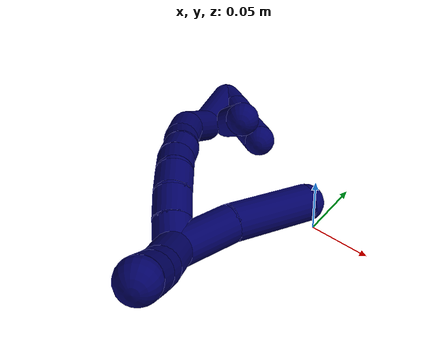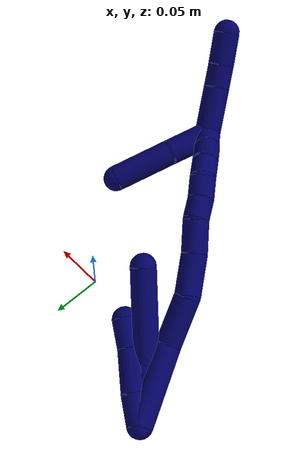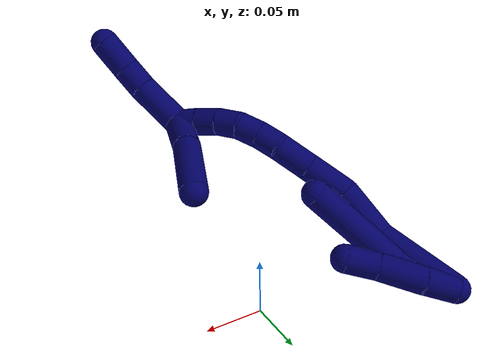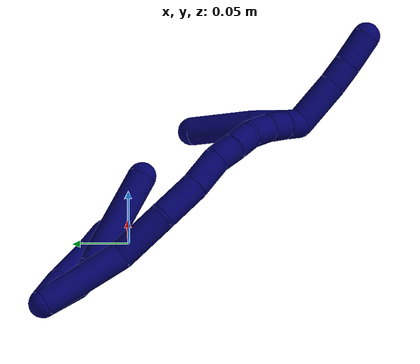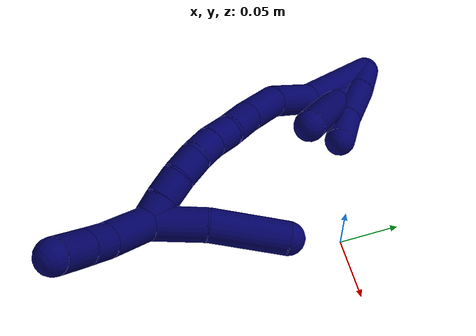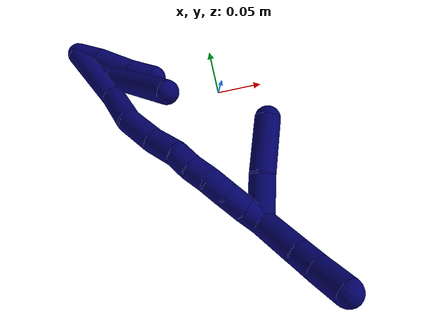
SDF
<sdf version="1.7">
 <world name="default">
  <model name="7">
   <static>0</static>
   <link name="7">
    <collision name="collision-cylinder-e_1_2_8">
     <pose>0.000739 0.003597 -0.017818 -2.94237 0.04062 -0.401032</pose>
     <geometry><cylinder><radius>0.0125</radius><length>0.036385</length></cylinder></geometry>
     <surface>
      <friction><ode><mu>1.16</mu><mu2>1.16</mu2><slip1>0</slip1><slip2>0</slip2></ode></friction>
      <contact><ode><kp>1e+06</kp><kd>1</kd><max_vel>0</max_vel><min_depth>0.001</min_depth></ode></contact>
     </surface>
    </collision>
    <visual name="visual-cylinder-e_1_2_8">
     <pose>0.000739 0.003597 -0.017818 -2.94237 0.04062 -0.401032</pose>
     <geometry><cylinder><radius>0.0125</radius><length>0.036385</length></cylinder></geometry>
     <material><ambient>0.003922 0 0.403922 1</ambient></material>
    </visual>
    <collision name="collision-cylinder-e_2_8_9">
     <pose>0.004495 0.006638 -0.045988 3.08783 0.283256 2.76879</pose>
     <geometry><cylinder><radius>0.0125</radius><length>0.021595</length></cylinder></geometry>
     <surface>
      <friction><ode><mu>1.16</mu><mu2>1.16</mu2><slip1>0</slip1><slip2>0</slip2></ode></friction>
      <contact><ode><kp>1e+06</kp><kd>1</kd><max_vel>0</max_vel><min_depth>0.001</min_depth></ode></contact>
     </surface>
    </collision>
    <visual name="visual-cylinder-e_2_8_9">
     <pose>0.004495 0.006638 -0.045988 3.08783 0.283256 2.76879</pose>
     <geometry><cylinder><radius>0.0125</radius><length>0.021595</length></cylinder></geometry>
     <material><ambient>0.003922 0 0.403922 1</ambient></material>
    </visual>
    <collision name="collision-cylinder-e_3_9_6">
     <pose>0.025432 -0.005298 -0.097161 2.86974 0.40005 1.95463</pose>
     <geometry><cylinder><radius>0.0125</radius><length>0.09202</length></cylinder></geometry>
     <surface>
      <friction><ode><mu>1.16</mu><mu2>1.16</mu2><slip1>0</slip1><slip2>0</slip2></ode></friction>
      <contact><ode><kp>1e+06</kp><kd>1</kd><max_vel>0</max_vel><min_depth>0.001</min_depth></ode></contact>
     </surface>
    </collision>
    <visual name="visual-cylinder-e_3_9_6">
     <pose>0.025432 -0.005298 -0.097161 2.86974 0.40005 1.95463</pose>
     <geometry><cylinder><radius>0.0125</radius><length>0.09202</length></cylinder></geometry>
     <material><ambient>0.003922 0 0.403922 1</ambient></material>
    </visual>
    <collision name="collision-cylinder-e_1_2_10">
     <pose>0.005813 0.002841 -0.013323 -2.93148 0.403345 -2.18927</pose>
     <geometry><cylinder><radius>0.0125</radius><length>0.029622</length></cylinder></geometry>
     <surface>
      <friction><ode><mu>1.16</mu><mu2>1.16</mu2><slip1>0</slip1><slip2>0</slip2></ode></friction>
      <contact><ode><kp>1e+06</kp><kd>1</kd><max_vel>0</max_vel><min_depth>0.001</min_depth></ode></contact>
     </surface>
    </collision>
    <visual name="visual-cylinder-e_1_2_10">
     <pose>0.005813 0.002841 -0.013323 -2.93148 0.403345 -2.18927</pose>
     <geometry><cylinder><radius>0.0125</radius><length>0.029622</length></cylinder></geometry>
     <material><ambient>0.003922 0 0.403922 1</ambient></material>
    </visual>
    <collision name="collision-cylinder-e_2_10_11">
     <pose>0.017934 0.009283 -0.046086 -2.95845 0.308802 -2.07551</pose>
     <geometry><cylinder><radius>0.0125</radius><length>0.041504</length></cylinder></geometry>
     <surface>
      <friction><ode><mu>1.16</mu><mu2>1.16</mu2><slip1>0</slip1><slip2>0</slip2></ode></friction>
      <contact><ode><kp>1e+06</kp><kd>1</kd><max_vel>0</max_vel><min_depth>0.001</min_depth></ode></contact>
     </surface>
    </collision>
    <visual name="visual-cylinder-e_2_10_11">
     <pose>0.017934 0.009283 -0.046086 -2.95845 0.308802 -2.07551</pose>
     <geometry><cylinder><radius>0.0125</radius><length>0.041504</length></cylinder></geometry>
     <material><ambient>0.003922 0 0.403922 1</ambient></material>
    </visual>
    <collision name="collision-cylinder-e_3_11_5">
     <pose>0.029852 0.016137 -0.078423 -2.89452 0.399225 -2.04065</pose>
     <geometry><cylinder><radius>0.0125</radius><length>0.028874</length></cylinder></geometry>
     <surface>
      <friction><ode><mu>1.16</mu><mu2>1.16</mu2><slip1>0</slip1><slip2>0</slip2></ode></friction>
      <contact><ode><kp>1e+06</kp><kd>1</kd><max_vel>0</max_vel><min_depth>0.001</min_depth></ode></contact>
     </surface>
    </collision>
    <visual name="visual-cylinder-e_3_11_5">
     <pose>0.029852 0.016137 -0.078423 -2.89452 0.399225 -2.04065</pose>
     <geometry><cylinder><radius>0.0125</radius><length>0.028874</length></cylinder></geometry>
     <material><ambient>0.003922 0 0.403922 1</ambient></material>
    </visual>
    <collision name="collision-cylinder-e_1_2_12">
     <pose>-0.002174 -0.002559 -0.039144 3.07632 -0.05537 -1.40685</pose>
     <geometry><cylinder><radius>0.0125</radius><length>0.078576</length></cylinder></geometry>
     <surface>
      <friction><ode><mu>1.16</mu><mu2>1.16</mu2><slip1>0</slip1><slip2>0</slip2></ode></friction>
      <contact><ode><kp>1e+06</kp><kd>1</kd><max_vel>0</max_vel><min_depth>0.001</min_depth></ode></contact>
     </surface>
    </collision>
    <visual name="visual-cylinder-e_1_2_12">
     <pose>-0.002174 -0.002559 -0.039144 3.07632 -0.05537 -1.40685</pose>
     <geometry><cylinder><radius>0.0125</radius><length>0.078576</length></cylinder></geometry>
     <material><ambient>0.003922 0 0.403922 1</ambient></material>
    </visual>
    <collision name="collision-cylinder-e_2_12_13">
     <pose>-0.004133 -0.013835 -0.10115 2.77731 0.008828 0.047923</pose>
     <geometry><cylinder><radius>0.0125</radius><length>0.048937</length></cylinder></geometry>
     <surface>
      <friction><ode><mu>1.16</mu><mu2>1.16</mu2><slip1>0</slip1><slip2>0</slip2></ode></friction>
      <contact><ode><kp>1e+06</kp><kd>1</kd><max_vel>0</max_vel><min_depth>0.001</min_depth></ode></contact>
     </surface>
    </collision>
    <visual name="visual-cylinder-e_2_12_13">
     <pose>-0.004133 -0.013835 -0.10115 2.77731 0.008828 0.047923</pose>
     <geometry><cylinder><radius>0.0125</radius><length>0.048937</length></cylinder></geometry>
     <material><ambient>0.003922 0 0.403922 1</ambient></material>
    </visual>
    <collision name="collision-cylinder-e_3_13_14">
     <pose>-0.001068 -0.024497 -0.143483 3.04201 0.144559 1.93605</pose>
     <geometry><cylinder><radius>0.0125</radius><length>0.039548</length></cylinder></geometry>
     <surface>
      <friction><ode><mu>1.16</mu><mu2>1.16</mu2><slip1>0</slip1><slip2>0</slip2></ode></friction>
      <contact><ode><kp>1e+06</kp><kd>1</kd><max_vel>0</max_vel><min_depth>0.001</min_depth></ode></contact>
     </surface>
    </collision>
    <visual name="visual-cylinder-e_3_13_14">
     <pose>-0.001068 -0.024497 -0.143483 3.04201 0.144559 1.93605</pose>
     <geometry><cylinder><radius>0.0125</radius><length>0.039548</length></cylinder></geometry>
     <material><ambient>0.003922 0 0.403922 1</ambient></material>
    </visual>
    <collision name="collision-cylinder-e_4_14_15">
     <pose>0.006069 -0.02826 -0.178239 3.02325 0.271679 2.32363</pose>
     <geometry><cylinder><radius>0.0125</radius><length>0.031958</length></cylinder></geometry>
     <surface>
      <friction><ode><mu>1.16</mu><mu2>1.16</mu2><slip1>0</slip1><slip2>0</slip2></ode></friction>
      <contact><ode><kp>1e+06</kp><kd>1</kd><max_vel>0</max_vel><min_depth>0.001</min_depth></ode></contact>
     </surface>
    </collision>
    <visual name="visual-cylinder-e_4_14_15">
     <pose>0.006069 -0.02826 -0.178239 3.02325 0.271679 2.32363</pose>
     <geometry><cylinder><radius>0.0125</radius><length>0.031958</length></cylinder></geometry>
     <material><ambient>0.003922 0 0.403922 1</ambient></material>
    </visual>
    <collision name="collision-cylinder-e_5_15_16">
     <pose>0.010787 -0.030273 -0.203918 3.12283 0.041365 2.29015</pose>
     <geometry><cylinder><radius>0.0125</radius><length>0.020809</length></cylinder></geometry>
     <surface>
      <friction><ode><mu>1.16</mu><mu2>1.16</mu2><slip1>0</slip1><slip2>0</slip2></ode></friction>
      <contact><ode><kp>1e+06</kp><kd>1</kd><max_vel>0</max_vel><min_depth>0.001</min_depth></ode></contact>
     </surface>
    </collision>
    <visual name="visual-cylinder-e_5_15_16">
     <pose>0.010787 -0.030273 -0.203918 3.12283 0.041365 2.29015</pose>
     <geometry><cylinder><radius>0.0125</radius><length>0.020809</length></cylinder></geometry>
     <material><ambient>0.003922 0 0.403922 1</ambient></material>
    </visual>
    <collision name="collision-cylinder-e_6_16_17">
     <pose>0.012647 -0.029713 -0.224245 -3.06575 0.142553 -2.16466</pose>
     <geometry><cylinder><radius>0.0125</radius><length>0.020128</length></cylinder></geometry>
     <surface>
      <friction><ode><mu>1.16</mu><mu2>1.16</mu2><slip1>0</slip1><slip2>0</slip2></ode></friction>
      <contact><ode><kp>1e+06</kp><kd>1</kd><max_vel>0</max_vel><min_depth>0.001</min_depth></ode></contact>
     </surface>
    </collision>
    <visual name="visual-cylinder-e_6_16_17">
     <pose>0.012647 -0.029713 -0.224245 -3.06575 0.142553 -2.16466</pose>
     <geometry><cylinder><radius>0.0125</radius><length>0.020128</length></cylinder></geometry>
     <material><ambient>0.003922 0 0.403922 1</ambient></material>
    </visual>
    <collision name="collision-cylinder-e_7_17_18">
     <pose>0.013931 -0.025689 -0.243643 -2.80902 -0.014584 0.086841</pose>
     <geometry><cylinder><radius>0.0125</radius><length>0.020029</length></cylinder></geometry>
     <surface>
      <friction><ode><mu>1.16</mu><mu2>1.16</mu2><slip1>0</slip1><slip2>0</slip2></ode></friction>
      <contact><ode><kp>1e+06</kp><kd>1</kd><max_vel>0</max_vel><min_depth>0.001</min_depth></ode></contact>
     </surface>
    </collision>
    <visual name="visual-cylinder-e_7_17_18">
     <pose>0.013931 -0.025689 -0.243643 -2.80902 -0.014584 0.086841</pose>
     <geometry><cylinder><radius>0.0125</radius><length>0.020029</length></cylinder></geometry>
     <material><ambient>0.003922 0 0.403922 1</ambient></material>
    </visual>
    <collision name="collision-cylinder-e_8_18_19">
     <pose>0.013188 -0.017607 -0.26186 -2.63882 -0.059692 0.231459</pose>
     <geometry><cylinder><radius>0.0125</radius><length>0.020012</length></cylinder></geometry>
     <surface>
      <friction><ode><mu>1.16</mu><mu2>1.16</mu2><slip1>0</slip1><slip2>0</slip2></ode></friction>
      <contact><ode><kp>1e+06</kp><kd>1</kd><max_vel>0</max_vel><min_depth>0.001</min_depth></ode></contact>
     </surface>
    </collision>
    <visual name="visual-cylinder-e_8_18_19">
     <pose>0.013188 -0.017607 -0.26186 -2.63882 -0.059692 0.231459</pose>
     <geometry><cylinder><radius>0.0125</radius><length>0.020012</length></cylinder></geometry>
     <material><ambient>0.003922 0 0.403922 1</ambient></material>
    </visual>
    <collision name="collision-cylinder-e_9_19_1">
     <pose>0.012264 -0.007376 -0.279013 -2.56878 -0.032715 0.11098</pose>
     <geometry><cylinder><radius>0.0125</radius><length>0.020003</length></cylinder></geometry>
     <surface>
      <friction><ode><mu>1.16</mu><mu2>1.16</mu2><slip1>0</slip1><slip2>0</slip2></ode></friction>
      <contact><ode><kp>1e+06</kp><kd>1</kd><max_vel>0</max_vel><min_depth>0.001</min_depth></ode></contact>
     </surface>
    </collision>
    <visual name="visual-cylinder-e_9_19_1">
     <pose>0.012264 -0.007376 -0.279013 -2.56878 -0.032715 0.11098</pose>
     <geometry><cylinder><radius>0.0125</radius><length>0.020003</length></cylinder></geometry>
     <material><ambient>0.003922 0 0.403922 1</ambient></material>
    </visual>
    <collision name="collision-cylinder-e_1_1_20">
     <pose>0.026606 0.002301 -0.273207 -0.291271 0.779918 -0.120422</pose>
     <geometry><cylinder><radius>0.0125</radius><length>0.04172</length></cylinder></geometry>
     <surface>
      <friction><ode><mu>1.16</mu><mu2>1.16</mu2><slip1>0</slip1><slip2>0</slip2></ode></friction>
      <contact><ode><kp>1e+06</kp><kd>1</kd><max_vel>0</max_vel><min_depth>0.001</min_depth></ode></contact>
     </surface>
    </collision>
    <visual name="visual-cylinder-e_1_1_20">
     <pose>0.026606 0.002301 -0.273207 -0.291271 0.779918 -0.120422</pose>
     <geometry><cylinder><radius>0.0125</radius><length>0.04172</length></cylinder></geometry>
     <material><ambient>0.003922 0 0.403922 1</ambient></material>
    </visual>
    <collision name="collision-cylinder-e_2_20_4">
     <pose>0.060903 0.016839 -0.240074 -0.497499 0.739047 -0.196133</pose>
     <geometry><cylinder><radius>0.0125</radius><length>0.05828</length></cylinder></geometry>
     <surface>
      <friction><ode><mu>1.16</mu><mu2>1.16</mu2><slip1>0</slip1><slip2>0</slip2></ode></friction>
      <contact><ode><kp>1e+06</kp><kd>1</kd><max_vel>0</max_vel><min_depth>0.001</min_depth></ode></contact>
     </surface>
    </collision>
    <visual name="visual-cylinder-e_2_20_4">
     <pose>0.060903 0.016839 -0.240074 -0.497499 0.739047 -0.196133</pose>
     <geometry><cylinder><radius>0.0125</radius><length>0.05828</length></cylinder></geometry>
     <material><ambient>0.003922 0 0.403922 1</ambient></material>
    </visual>
    <collision name="collision-cylinder-e_1_1_21">
     <pose>0.015925 -0.008381 -0.309426 2.85768 0.17224 1.08682</pose>
     <geometry><cylinder><radius>0.0125</radius><length>0.046549</length></cylinder></geometry>
     <surface>
      <friction><ode><mu>1.16</mu><mu2>1.16</mu2><slip1>0</slip1><slip2>0</slip2></ode></friction>
      <contact><ode><kp>1e+06</kp><kd>1</kd><max_vel>0</max_vel><min_depth>0.001</min_depth></ode></contact>
     </surface>
    </collision>
    <visual name="visual-cylinder-e_1_1_21">
     <pose>0.015925 -0.008381 -0.309426 2.85768 0.17224 1.08682</pose>
     <geometry><cylinder><radius>0.0125</radius><length>0.046549</length></cylinder></geometry>
     <material><ambient>0.003922 0 0.403922 1</ambient></material>
    </visual>
    <collision name="collision-cylinder-e_2_21_22">
     <pose>0.022169 -0.01892 -0.341718 2.76073 0.200851 0.963334</pose>
     <geometry><cylinder><radius>0.0125</radius><length>0.022602</length></cylinder></geometry>
     <surface>
      <friction><ode><mu>1.16</mu><mu2>1.16</mu2><slip1>0</slip1><slip2>0</slip2></ode></friction>
      <contact><ode><kp>1e+06</kp><kd>1</kd><max_vel>0</max_vel><min_depth>0.001</min_depth></ode></contact>
     </surface>
    </collision>
    <visual name="visual-cylinder-e_2_21_22">
     <pose>0.022169 -0.01892 -0.341718 2.76073 0.200851 0.963334</pose>
     <geometry><cylinder><radius>0.0125</radius><length>0.022602</length></cylinder></geometry>
     <material><ambient>0.003922 0 0.403922 1</ambient></material>
    </visual>
    <collision name="collision-cylinder-e_3_22_3">
     <pose>0.028018 -0.028992 -0.365766 2.73334 0.235167 1.03711</pose>
     <geometry><cylinder><radius>0.0125</radius><length>0.030848</length></cylinder></geometry>
     <surface>
      <friction><ode><mu>1.16</mu><mu2>1.16</mu2><slip1>0</slip1><slip2>0</slip2></ode></friction>
      <contact><ode><kp>1e+06</kp><kd>1</kd><max_vel>0</max_vel><min_depth>0.001</min_depth></ode></contact>
     </surface>
    </collision>
    <visual name="visual-cylinder-e_3_22_3">
     <pose>0.028018 -0.028992 -0.365766 2.73334 0.235167 1.03711</pose>
     <geometry><cylinder><radius>0.0125</radius><length>0.030848</length></cylinder></geometry>
     <material><ambient>0.003922 0 0.403922 1</ambient></material>
    </visual>
    <collision name="collision-sphere-3">
     <pose>0.031612 -0.034947 -0.379533 0 -0 0</pose>
     <geometry><sphere><radius>0.0125</radius></sphere></geometry>
     <surface>
      <friction><ode><mu>1.16</mu><mu2>1.16</mu2><slip1>0</slip1><slip2>0</slip2></ode></friction>
      <contact><ode><kp>1e+06</kp><kd>1</kd><max_vel>0</max_vel><min_depth>0.001</min_depth></ode></contact>
     </surface>
    </collision>
    <visual name="visual-sphere-3">
     <pose>0.031612 -0.034947 -0.379533 0 -0 0</pose>
     <geometry><sphere><radius>0.0125</radius></sphere></geometry>
     <material><ambient>0.003922 0 0.403922 1</ambient></material>
    </visual>
    <collision name="collision-sphere-22">
     <pose>0.024424 -0.023037 -0.351999 0 -0 0</pose>
     <geometry><sphere><radius>0.0125</radius></sphere></geometry>
     <surface>
      <friction><ode><mu>1.16</mu><mu2>1.16</mu2><slip1>0</slip1><slip2>0</slip2></ode></friction>
      <contact><ode><kp>1e+06</kp><kd>1</kd><max_vel>0</max_vel><min_depth>0.001</min_depth></ode></contact>
     </surface>
    </collision>
    <visual name="visual-sphere-22">
     <pose>0.024424 -0.023037 -0.351999 0 -0 0</pose>
     <geometry><sphere><radius>0.0125</radius></sphere></geometry>
     <material><ambient>0.003922 0 0.403922 1</ambient></material>
    </visual>
    <collision name="collision-sphere-21">
     <pose>0.019914 -0.014804 -0.331438 0 -0 0</pose>
     <geometry><sphere><radius>0.0125</radius></sphere></geometry>
     <surface>
      <friction><ode><mu>1.16</mu><mu2>1.16</mu2><slip1>0</slip1><slip2>0</slip2></ode></friction>
      <contact><ode><kp>1e+06</kp><kd>1</kd><max_vel>0</max_vel><min_depth>0.001</min_depth></ode></contact>
     </surface>
    </collision>
    <visual name="visual-sphere-21">
     <pose>0.019914 -0.014804 -0.331438 0 -0 0</pose>
     <geometry><sphere><radius>0.0125</radius></sphere></geometry>
     <material><ambient>0.003922 0 0.403922 1</ambient></material>
    </visual>
    <collision name="collision-sphere-4">
     <pose>0.080531 0.027117 -0.221147 0 -0 0</pose>
     <geometry><sphere><radius>0.0125</radius></sphere></geometry>
     <surface>
      <friction><ode><mu>1.16</mu><mu2>1.16</mu2><slip1>0</slip1><slip2>0</slip2></ode></friction>
      <contact><ode><kp>1e+06</kp><kd>1</kd><max_vel>0</max_vel><min_depth>0.001</min_depth></ode></contact>
     </surface>
    </collision>
    <visual name="visual-sphere-4">
     <pose>0.080531 0.027117 -0.221147 0 -0 0</pose>
     <geometry><sphere><radius>0.0125</radius></sphere></geometry>
     <material><ambient>0.003922 0 0.403922 1</ambient></material>
    </visual>
    <collision name="collision-sphere-20">
     <pose>0.041275 0.00656 -0.259001 0 -0 0</pose>
     <geometry><sphere><radius>0.0125</radius></sphere></geometry>
     <surface>
      <friction><ode><mu>1.16</mu><mu2>1.16</mu2><slip1>0</slip1><slip2>0</slip2></ode></friction>
      <contact><ode><kp>1e+06</kp><kd>1</kd><max_vel>0</max_vel><min_depth>0.001</min_depth></ode></contact>
     </surface>
    </collision>
    <visual name="visual-sphere-20">
     <pose>0.041275 0.00656 -0.259001 0 -0 0</pose>
     <geometry><sphere><radius>0.0125</radius></sphere></geometry>
     <material><ambient>0.003922 0 0.403922 1</ambient></material>
    </visual>
    <collision name="collision-sphere-11">
     <pose>0.02424 0.012884 -0.065526 0 -0 0</pose>
     <geometry><sphere><radius>0.0125</radius></sphere></geometry>
     <surface>
      <friction><ode><mu>1.16</mu><mu2>1.16</mu2><slip1>0</slip1><slip2>0</slip2></ode></friction>
      <contact><ode><kp>1e+06</kp><kd>1</kd><max_vel>0</max_vel><min_depth>0.001</min_depth></ode></contact>
     </surface>
    </collision>
    <visual name="visual-sphere-11">
     <pose>0.02424 0.012884 -0.065526 0 -0 0</pose>
     <geometry><sphere><radius>0.0125</radius></sphere></geometry>
     <material><ambient>0.003922 0 0.403922 1</ambient></material>
    </visual>
    <collision name="collision-sphere-10">
     <pose>0.011627 0.005683 -0.026646 0 -0 0</pose>
     <geometry><sphere><radius>0.0125</radius></sphere></geometry>
     <surface>
      <friction><ode><mu>1.16</mu><mu2>1.16</mu2><slip1>0</slip1><slip2>0</slip2></ode></friction>
      <contact><ode><kp>1e+06</kp><kd>1</kd><max_vel>0</max_vel><min_depth>0.001</min_depth></ode></contact>
     </surface>
    </collision>
    <visual name="visual-sphere-10">
     <pose>0.011627 0.005683 -0.026646 0 -0 0</pose>
     <geometry><sphere><radius>0.0125</radius></sphere></geometry>
     <material><ambient>0.003922 0 0.403922 1</ambient></material>
    </visual>
    <collision name="collision-sphere-6">
     <pose>0.043351 -0.016677 -0.137982 0 -0 0</pose>
     <geometry><sphere><radius>0.0125</radius></sphere></geometry>
     <surface>
      <friction><ode><mu>1.16</mu><mu2>1.16</mu2><slip1>0</slip1><slip2>0</slip2></ode></friction>
      <contact><ode><kp>1e+06</kp><kd>1</kd><max_vel>0</max_vel><min_depth>0.001</min_depth></ode></contact>
     </surface>
    </collision>
    <visual name="visual-sphere-6">
     <pose>0.043351 -0.016677 -0.137982 0 -0 0</pose>
     <geometry><sphere><radius>0.0125</radius></sphere></geometry>
     <material><ambient>0.003922 0 0.403922 1</ambient></material>
    </visual>
    <collision name="collision-sphere-9">
     <pose>0.007513 0.006081 -0.056341 0 -0 0</pose>
     <geometry><sphere><radius>0.0125</radius></sphere></geometry>
     <surface>
      <friction><ode><mu>1.16</mu><mu2>1.16</mu2><slip1>0</slip1><slip2>0</slip2></ode></friction>
      <contact><ode><kp>1e+06</kp><kd>1</kd><max_vel>0</max_vel><min_depth>0.001</min_depth></ode></contact>
     </surface>
    </collision>
    <visual name="visual-sphere-9">
     <pose>0.007513 0.006081 -0.056341 0 -0 0</pose>
     <geometry><sphere><radius>0.0125</radius></sphere></geometry>
     <material><ambient>0.003922 0 0.403922 1</ambient></material>
    </visual>
    <collision name="collision-sphere-2">
     <geometry><sphere><radius>0.0125</radius></sphere></geometry>
     <surface>
      <friction><ode><mu>1.16</mu><mu2>1.16</mu2><slip1>0</slip1><slip2>0</slip2></ode></friction>
      <contact><ode><kp>1e+06</kp><kd>1</kd><max_vel>0</max_vel><min_depth>0.001</min_depth></ode></contact>
     </surface>
    </collision>
    <visual name="visual-sphere-2">
     <geometry><sphere><radius>0.0125</radius></sphere></geometry>
     <material><ambient>0.003922 0 0.403922 1</ambient></material>
    </visual>
    <collision name="collision-sphere-19">
     <pose>0.012591 -0.012794 -0.270612 0 -0 0</pose>
     <geometry><sphere><radius>0.0125</radius></sphere></geometry>
     <surface>
      <friction><ode><mu>1.16</mu><mu2>1.16</mu2><slip1>0</slip1><slip2>0</slip2></ode></friction>
      <contact><ode><kp>1e+06</kp><kd>1</kd><max_vel>0</max_vel><min_depth>0.001</min_depth></ode></contact>
     </surface>
    </collision>
    <visual name="visual-sphere-19">
     <pose>0.012591 -0.012794 -0.270612 0 -0 0</pose>
     <geometry><sphere><radius>0.0125</radius></sphere></geometry>
     <material><ambient>0.003922 0 0.403922 1</ambient></material>
    </visual>
    <collision name="collision-sphere-8">
     <pose>0.001478 0.007195 -0.035636 0 -0 0</pose>
     <geometry><sphere><radius>0.0125</radius></sphere></geometry>
     <surface>
      <friction><ode><mu>1.16</mu><mu2>1.16</mu2><slip1>0</slip1><slip2>0</slip2></ode></friction>
      <contact><ode><kp>1e+06</kp><kd>1</kd><max_vel>0</max_vel><min_depth>0.001</min_depth></ode></contact>
     </surface>
    </collision>
    <visual name="visual-sphere-8">
     <pose>0.001478 0.007195 -0.035636 0 -0 0</pose>
     <geometry><sphere><radius>0.0125</radius></sphere></geometry>
     <material><ambient>0.003922 0 0.403922 1</ambient></material>
    </visual>
    <collision name="collision-sphere-5">
     <pose>0.035464 0.01939 -0.091321 0 -0 0</pose>
     <geometry><sphere><radius>0.0125</radius></sphere></geometry>
     <surface>
      <friction><ode><mu>1.16</mu><mu2>1.16</mu2><slip1>0</slip1><slip2>0</slip2></ode></friction>
      <contact><ode><kp>1e+06</kp><kd>1</kd><max_vel>0</max_vel><min_depth>0.001</min_depth></ode></contact>
     </surface>
    </collision>
    <visual name="visual-sphere-5">
     <pose>0.035464 0.01939 -0.091321 0 -0 0</pose>
     <geometry><sphere><radius>0.0125</radius></sphere></geometry>
     <material><ambient>0.003922 0 0.403922 1</ambient></material>
    </visual>
    <collision name="collision-sphere-12">
     <pose>-0.004349 -0.005118 -0.078288 0 -0 0</pose>
     <geometry><sphere><radius>0.0125</radius></sphere></geometry>
     <surface>
      <friction><ode><mu>1.16</mu><mu2>1.16</mu2><slip1>0</slip1><slip2>0</slip2></ode></friction>
      <contact><ode><kp>1e+06</kp><kd>1</kd><max_vel>0</max_vel><min_depth>0.001</min_depth></ode></contact>
     </surface>
    </collision>
    <visual name="visual-sphere-12">
     <pose>-0.004349 -0.005118 -0.078288 0 -0 0</pose>
     <geometry><sphere><radius>0.0125</radius></sphere></geometry>
     <material><ambient>0.003922 0 0.403922 1</ambient></material>
    </visual>
    <collision name="collision-sphere-13">
     <pose>-0.003917 -0.022552 -0.124012 0 -0 0</pose>
     <geometry><sphere><radius>0.0125</radius></sphere></geometry>
     <surface>
      <friction><ode><mu>1.16</mu><mu2>1.16</mu2><slip1>0</slip1><slip2>0</slip2></ode></friction>
      <contact><ode><kp>1e+06</kp><kd>1</kd><max_vel>0</max_vel><min_depth>0.001</min_depth></ode></contact>
     </surface>
    </collision>
    <visual name="visual-sphere-13">
     <pose>-0.003917 -0.022552 -0.124012 0 -0 0</pose>
     <geometry><sphere><radius>0.0125</radius></sphere></geometry>
     <material><ambient>0.003922 0 0.403922 1</ambient></material>
    </visual>
    <collision name="collision-sphere-14">
     <pose>0.001781 -0.026443 -0.162953 0 -0 0</pose>
     <geometry><sphere><radius>0.0125</radius></sphere></geometry>
     <surface>
      <friction><ode><mu>1.16</mu><mu2>1.16</mu2><slip1>0</slip1><slip2>0</slip2></ode></friction>
      <contact><ode><kp>1e+06</kp><kd>1</kd><max_vel>0</max_vel><min_depth>0.001</min_depth></ode></contact>
     </surface>
    </collision>
    <visual name="visual-sphere-14">
     <pose>0.001781 -0.026443 -0.162953 0 -0 0</pose>
     <geometry><sphere><radius>0.0125</radius></sphere></geometry>
     <material><ambient>0.003922 0 0.403922 1</ambient></material>
    </visual>
    <collision name="collision-sphere-15">
     <pose>0.010357 -0.030078 -0.193524 0 -0 0</pose>
     <geometry><sphere><radius>0.0125</radius></sphere></geometry>
     <surface>
      <friction><ode><mu>1.16</mu><mu2>1.16</mu2><slip1>0</slip1><slip2>0</slip2></ode></friction>
      <contact><ode><kp>1e+06</kp><kd>1</kd><max_vel>0</max_vel><min_depth>0.001</min_depth></ode></contact>
     </surface>
    </collision>
    <visual name="visual-sphere-15">
     <pose>0.010357 -0.030078 -0.193524 0 -0 0</pose>
     <geometry><sphere><radius>0.0125</radius></sphere></geometry>
     <material><ambient>0.003922 0 0.403922 1</ambient></material>
    </visual>
    <collision name="collision-sphere-16">
     <pose>0.011217 -0.030468 -0.214312 0 -0 0</pose>
     <geometry><sphere><radius>0.0125</radius></sphere></geometry>
     <surface>
      <friction><ode><mu>1.16</mu><mu2>1.16</mu2><slip1>0</slip1><slip2>0</slip2></ode></friction>
      <contact><ode><kp>1e+06</kp><kd>1</kd><max_vel>0</max_vel><min_depth>0.001</min_depth></ode></contact>
     </surface>
    </collision>
    <visual name="visual-sphere-16">
     <pose>0.011217 -0.030468 -0.214312 0 -0 0</pose>
     <geometry><sphere><radius>0.0125</radius></sphere></geometry>
     <material><ambient>0.003922 0 0.403922 1</ambient></material>
    </visual>
    <collision name="collision-sphere-17">
     <pose>0.014077 -0.028958 -0.234178 0 -0 0</pose>
     <geometry><sphere><radius>0.0125</radius></sphere></geometry>
     <surface>
      <friction><ode><mu>1.16</mu><mu2>1.16</mu2><slip1>0</slip1><slip2>0</slip2></ode></friction>
      <contact><ode><kp>1e+06</kp><kd>1</kd><max_vel>0</max_vel><min_depth>0.001</min_depth></ode></contact>
     </surface>
    </collision>
    <visual name="visual-sphere-17">
     <pose>0.014077 -0.028958 -0.234178 0 -0 0</pose>
     <geometry><sphere><radius>0.0125</radius></sphere></geometry>
     <material><ambient>0.003922 0 0.403922 1</ambient></material>
    </visual>
    <collision name="collision-sphere-18">
     <pose>0.013785 -0.022419 -0.253108 0 -0 0</pose>
     <geometry><sphere><radius>0.0125</radius></sphere></geometry>
     <surface>
      <friction><ode><mu>1.16</mu><mu2>1.16</mu2><slip1>0</slip1><slip2>0</slip2></ode></friction>
      <contact><ode><kp>1e+06</kp><kd>1</kd><max_vel>0</max_vel><min_depth>0.001</min_depth></ode></contact>
     </surface>
    </collision>
    <visual name="visual-sphere-18">
     <pose>0.013785 -0.022419 -0.253108 0 -0 0</pose>
     <geometry><sphere><radius>0.0125</radius></sphere></geometry>
     <material><ambient>0.003922 0 0.403922 1</ambient></material>
    </visual>
    <collision name="collision-sphere-1">
     <pose>0.011936 -0.001958 -0.287413 0 -0 0</pose>
     <geometry><sphere><radius>0.0125</radius></sphere></geometry>
     <surface>
      <friction><ode><mu>1.16</mu><mu2>1.16</mu2><slip1>0</slip1><slip2>0</slip2></ode></friction>
      <contact><ode><kp>1e+06</kp><kd>1</kd><max_vel>0</max_vel><min_depth>0.001</min_depth></ode></contact>
     </surface>
    </collision>
    <visual name="visual-sphere-1">
     <pose>0.011936 -0.001958 -0.287413 0 -0 0</pose>
     <geometry><sphere><radius>0.0125</radius></sphere></geometry>
     <material><ambient>0.003922 0 0.403922 1</ambient></material>
    </visual>
    <inertial>
     <pose>0.016073 -0.00654 -0.157079 0 -0 0</pose>
     <mass>0.75</mass>
     <inertia><ixx>5.3e-05</ixx><ixy>0</ixy><ixz>0</ixz><iyy>6.2e-05</iyy><iyz>0</iyz><izz>-7.9e-05</izz></inertia>
    </inertial>
   </link>
   <pose>-0.149114 0.075092 0.012604 -1.93877 -0.430082 0.697183</pose>
  </model>
 </world>
</sdf>
